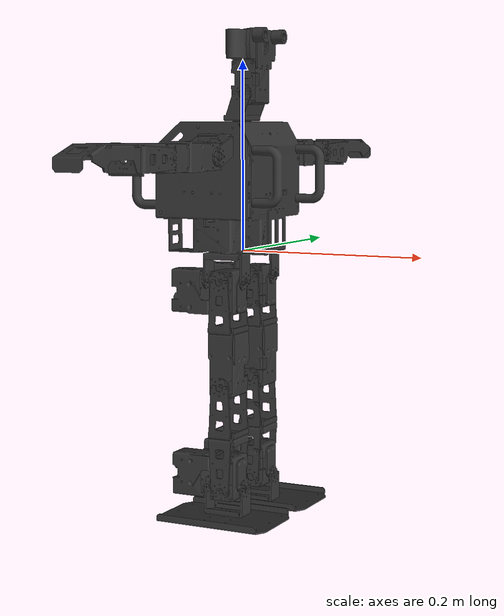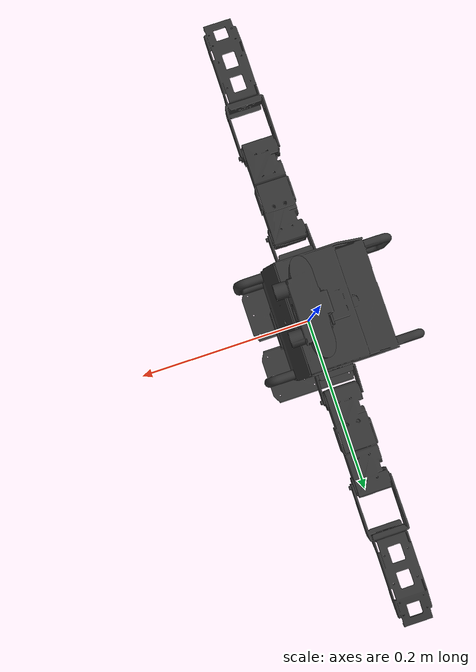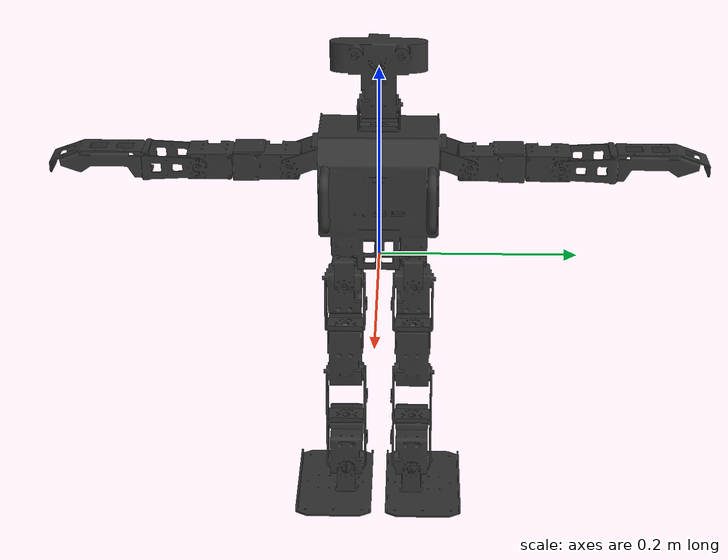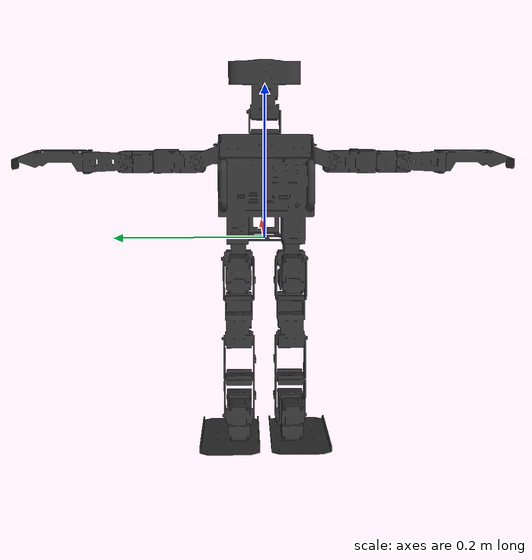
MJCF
<?xml version="1.0" ?>
<mujoco model="robotis_op3">
	<compiler meshdir="robotis_op3/meshes" texturedir="robotis_op3/textures" angle="radian" autolimits="true" balanceinertia="true" boundmass="0.000001" boundinertia="0.000001"/>
	<default>
		<default class="visual">
			<geom contype="0" conaffinity="0"/>
		</default>
		<default class="collision">
			<geom rgba="1.0 0.0 0.0 0.0"/>
		</default>
	</default>
	<asset>
		<mesh name="body" file="stl/body.stl" scale="1.0 1.0 1.0"/>
		<mesh name="bodyc" file="stl/bodyc.stl" scale="1.0 1.0 1.0"/>
		<mesh name="body1c" file="stl/body1c.stl" scale="1.0 1.0 1.0"/>
		<mesh name="body2c" file="stl/body2c.stl" scale="1.0 1.0 1.0"/>
		<mesh name="body3c" file="stl/body3c.stl" scale="1.0 1.0 1.0"/>
		<mesh name="body4c" file="stl/body4c.stl" scale="1.0 1.0 1.0"/>
		<mesh name="h1" file="stl/h1.stl" scale="1.0 1.0 1.0"/>
		<mesh name="h1c" file="stl/h1c.stl" scale="1.0 1.0 1.0"/>
		<mesh name="h2" file="stl/h2.stl" scale="1.0 1.0 1.0"/>
		<mesh name="h2c" file="stl/h2c.stl" scale="1.0 1.0 1.0"/>
		<mesh name="h21c" file="stl/h21c.stl" scale="1.0 1.0 1.0"/>
		<mesh name="h22c" file="stl/h22c.stl" scale="1.0 1.0 1.0"/>
		<mesh name="la1" file="stl/la1.stl" scale="1.0 1.0 1.0"/>
		<mesh name="la1c" file="stl/la1c.stl" scale="1.0 1.0 1.0"/>
		<mesh name="la2" file="stl/la2.stl" scale="1.0 1.0 1.0"/>
		<mesh name="la2c" file="stl/la2c.stl" scale="1.0 1.0 1.0"/>
		<mesh name="la3" file="stl/la3.stl" scale="1.0 1.0 1.0"/>
		<mesh name="la3c" file="stl/la3c.stl" scale="1.0 1.0 1.0"/>
		<mesh name="ra1" file="stl/ra1.stl" scale="1.0 1.0 1.0"/>
		<mesh name="ra1c" file="stl/ra1c.stl" scale="1.0 1.0 1.0"/>
		<mesh name="ra2" file="stl/ra2.stl" scale="1.0 1.0 1.0"/>
		<mesh name="ra2c" file="stl/ra2c.stl" scale="1.0 1.0 1.0"/>
		<mesh name="ra3" file="stl/ra3.stl" scale="1.0 1.0 1.0"/>
		<mesh name="ra3c" file="stl/ra3c.stl" scale="1.0 1.0 1.0"/>
		<mesh name="ll1" file="stl/ll1.stl" scale="1.0 1.0 1.0"/>
		<mesh name="ll1c" file="stl/ll1c.stl" scale="1.0 1.0 1.0"/>
		<mesh name="ll2" file="stl/ll2.stl" scale="1.0 1.0 1.0"/>
		<mesh name="ll2c" file="stl/ll2c.stl" scale="1.0 1.0 1.0"/>
		<mesh name="ll3" file="stl/ll3.stl" scale="1.0 1.0 1.0"/>
		<mesh name="ll3c" file="stl/ll3c.stl" scale="1.0 1.0 1.0"/>
		<mesh name="ll4" file="stl/ll4.stl" scale="1.0 1.0 1.0"/>
		<mesh name="ll4c" file="stl/ll4c.stl" scale="1.0 1.0 1.0"/>
		<mesh name="ll5" file="stl/ll5.stl" scale="1.0 1.0 1.0"/>
		<mesh name="ll5c" file="stl/ll5c.stl" scale="1.0 1.0 1.0"/>
		<mesh name="ll6" file="stl/ll6.stl" scale="1.0 1.0 1.0"/>
		<mesh name="rl1" file="stl/rl1.stl" scale="1.0 1.0 1.0"/>
		<mesh name="rl1c" file="stl/rl1c.stl" scale="1.0 1.0 1.0"/>
		<mesh name="rl2" file="stl/rl2.stl" scale="1.0 1.0 1.0"/>
		<mesh name="rl2c" file="stl/rl2c.stl" scale="1.0 1.0 1.0"/>
		<mesh name="rl3" file="stl/rl3.stl" scale="1.0 1.0 1.0"/>
		<mesh name="rl3c" file="stl/rl3c.stl" scale="1.0 1.0 1.0"/>
		<mesh name="rl4" file="stl/rl4.stl" scale="1.0 1.0 1.0"/>
		<mesh name="rl4c" file="stl/rl4c.stl" scale="1.0 1.0 1.0"/>
		<mesh name="rl5" file="stl/rl5.stl" scale="1.0 1.0 1.0"/>
		<mesh name="rl5c" file="stl/rl5c.stl" scale="1.0 1.0 1.0"/>
		<mesh name="rl6" file="stl/rl6.stl" scale="1.0 1.0 1.0"/>
		<material name="black" rgba="0.20000000298023224 0.20000000298023224 0.20000000298023224 1.0" emission="0.0" specular="0.5"/>
	</asset>
	<worldbody>
		<body name="robotis_op3" pos="0.0 0.0 0.0" quat="1.0 0.0 0.0 0.0">
			<body name="body_link" pos="0.0 0.0 0.0" quat="1.0 0.0 0.0 0.0">
				<geom name="Geom_0" type="mesh" pos="-0.015062353573739529 0.00010709041089285165 0.07382681220769882" quat="0.31562358140945435 0.33037233352661133 -0.6202384233474731 0.6376050114631653" mesh="body" material="black" class="visual"/>
				<geom name="Geom_1" type="mesh" pos="-0.01547978911548853 8.47600517772662e-07 0.06837675720453262" quat="0.9998198747634888 1.6580177543801256e-05 0.018978890031576157 -0.00011253798584220931" mesh="bodyc" class="collision"/>
				<geom name="Geom_2" type="mesh" pos="-0.08686629682779312 0.052499834448099136 0.07599484175443649" quat="0.7070932388305664 0.0001319300790783018 0.0001334189873887226 0.7071202993392944" mesh="body1c" class="collision"/>
				<geom name="Geom_3" type="mesh" pos="-0.0868721529841423 -0.05250003933906555 0.07600828260183334" quat="0.7070996761322021 -0.00021320315136108547 -0.00024253582523670048 0.7071138024330139" mesh="body2c" class="collision"/>
				<geom name="Geom_4" type="mesh" pos="0.05340399965643883 0.05198853462934494 0.08048465102910995" quat="0.7076866030693054 -0.000729478255379945 -0.0003954711137339473 0.7065260410308838" mesh="body3c" class="collision"/>
				<geom name="Geom_5" type="mesh" pos="0.053379133343696594 -0.05200115218758583 0.0805167555809021" quat="0.7071372270584106 6.267690332606435e-05 7.622383418492973e-05 0.707076370716095" mesh="body4c" class="collision"/>
				<body name="l_sho_pitch_link" pos="-0.0010000000474974513 0.05999999865889549 0.11100000143051147" quat="1.0 0.0 0.0 0.0">
					<inertial mass="0.011760000139474869" pos="0.0 0.008229999803006649 -0.0023300000466406345" quat="0.24427185952663422 0.6635746359825134 0.24427185952663422 0.6635746359825134" diaginertia="4.234009793435689e-06 3.6059900594409555e-06 1.6499999446750735e-06"/>
					<geom name="Geom_12" type="mesh" pos="-4.0903142206616394e-08 0.010566436685621738 -0.002973126480355859" quat="0.2261854112148285 0.6699541807174683 0.22618435323238373 0.6699568629264832" mesh="la1" material="black" class="visual"/>
					<geom name="Geom_13" type="mesh" pos="-5.168489991547176e-08 0.014937390573322773 -0.004382733721286058" quat="0.21737512946128845 0.6728646755218506 0.21738243103027344 0.6728640198707581" mesh="la1c" class="collision"/>
					<joint name="l_sho_pitch" type="hinge" pos="0.0 0.0 0.0" range="0.0 0.0" axis="0.0 1.0 0.0"/>
					<body name="l_sho_roll_link" pos="0.01899999938905239 0.02850000001490116 -0.009999999776482582" quat="1.0 0.0 0.0 0.0">
						<inertial mass="0.17757999897003174" pos="-0.01844000071287155 0.04513999819755554 0.0002800000074785203" quat="0.5018527507781982 0.500379741191864 -0.49817273020744324 0.4995877146720886" diaginertia="0.00023474199406336993 0.00022803999308962375 3.041829950234387e-05"/>
						<geom name="Geom_14" type="mesh" pos="-0.019178275018930435 0.04488653689622879 0.0007386953802779317" quat="0.5009437799453735 0.49853265285491943 -0.49895212054252625 0.5015649199485779" mesh="la2" material="black" class="visual"/>
						<geom name="Geom_15" type="mesh" pos="-0.017953641712665558 0.04512150213122368 0.0003643354866653681" quat="0.5021325349807739 0.5011329650878906 -0.4978412091732025 0.49888157844543457" mesh="la2c" class="collision"/>
						<joint name="l_sho_roll" type="hinge" pos="0.0 0.0 0.0" range="0.0 0.0" axis="-1.0 0.0 0.0"/>
						<body name="l_el_link" pos="0.0 0.09040000289678574 -9.999999747378752e-05" quat="1.0 0.0 0.0 0.0">
							<inertial mass="0.041269998997449875" pos="-0.01899999938905239 0.07033000141382217 0.003800000064074993" quat="0.48328912258148193 0.5161701440811157 -0.5161701440811157 0.48328912258148193" diaginertia="6.878499698359519e-05 6.196000322233886e-05 1.2065000191796571e-05"/>
							<geom name="Geom_16" type="mesh" pos="-0.018999997526407242 0.07777010649442673 0.003117768792435527" quat="0.4925389885902405 0.507351279258728 -0.507351279258728 0.4925389885902405" mesh="la3" material="black" class="visual"/>
							<geom name="Geom_17" type="mesh" pos="-0.018999997526407242 0.0671701654791832 0.00045586045598611236" quat="0.498165488243103 0.5018261075019836 -0.5018278360366821 0.4981671869754791" mesh="la3c" class="collision"/>
							<joint name="l_el" type="hinge" pos="0.0 0.0 0.0" range="0.0 0.0" axis="1.0 0.0 0.0"/>
						</body>
					</body>
				</body>
				<body name="r_sho_pitch_link" pos="-0.0010000000474974513 -0.05999999865889549 0.11100000143051147" quat="1.0 0.0 0.0 0.0">
					<inertial mass="0.011760000139474869" pos="0.0 -0.008229999803006649 -0.0023300000466406345" quat="-0.24427185952663422 0.6635746359825134 -0.24427185952663422 0.6635746359825134" diaginertia="4.234009793435689e-06 3.6059900594409555e-06 1.6499999446750735e-06"/>
					<geom name="Geom_18" type="mesh" pos="4.0903142206616394e-08 -0.010566436685621738 -0.002973126480355859" quat="-0.22618435323238373 0.6699568629264832 -0.2261854112148285 0.6699541807174683" mesh="ra1" material="black" class="visual"/>
					<geom name="Geom_19" type="mesh" pos="1.7024168741386347e-08 -0.01493731141090393 -0.004382750019431114" quat="-0.21737539768218994 0.6728663444519043 -0.21737487614154816 0.6728647351264954" mesh="ra1c" class="collision"/>
					<joint name="r_sho_pitch" type="hinge" pos="0.0 0.0 0.0" range="0.0 0.0" axis="0.0 -1.0 0.0"/>
					<body name="r_sho_roll_link" pos="0.01899999938905239 -0.02850000001490116 -0.009999999776482582" quat="1.0 0.0 0.0 0.0">
						<inertial mass="0.17757999897003174" pos="-0.01844000071287155 -0.04513999819755554 0.0002800000074785203" quat="0.500379741191864 0.5018527507781982 -0.4995877146720886 0.49817273020744324" diaginertia="0.00023474199406336993 0.00022803999308962375 3.041829950234387e-05"/>
						<geom name="Geom_20" type="mesh" pos="-0.019178282469511032 -0.04488654434680939 0.0007386964280158281" quat="0.4985331892967224 0.5009435415267944 -0.5015642046928406 0.4989525079727173" mesh="ra2" material="black" class="visual"/>
						<geom name="Geom_21" type="mesh" pos="-0.017953014001250267 -0.04512038454413414 0.0003643217496573925" quat="0.5011412501335144 0.5021283030509949 -0.4988856315612793 0.4978330135345459" mesh="ra2c" class="collision"/>
						<joint name="r_sho_roll" type="hinge" pos="0.0 0.0 0.0" range="0.0 0.0" axis="-1.0 0.0 0.0"/>
						<body name="r_el_link" pos="0.0 -0.09040000289678574 -9.999999747378752e-05" quat="1.0 0.0 0.0 0.0">
							<inertial mass="0.041269998997449875" pos="-0.01899999938905239 -0.07033000141382217 0.003800000064074993" quat="0.5161701440811157 0.48328912258148193 -0.48328912258148193 0.5161701440811157" diaginertia="6.878499698359519e-05 6.196000322233886e-05 1.2065000191796571e-05"/>
							<geom name="Geom_22" type="mesh" pos="-0.01900000311434269 -0.07777010649442673 0.003117768792435527" quat="0.507351279258728 0.4925389885902405 -0.4925389885902405 0.507351279258728" mesh="ra3" material="black" class="visual"/>
							<geom name="Geom_23" type="mesh" pos="-0.018999941647052765 -0.0671704038977623 0.00045584727195091546" quat="0.5018273591995239 0.4981687068939209 -0.4981642961502075 0.5018262267112732" mesh="ra3c" class="collision"/>
							<joint name="r_el" type="hinge" pos="0.0 0.0 0.0" range="0.0 0.0" axis="1.0 0.0 0.0"/>
						</body>
					</body>
				</body>
				<body name="l_hip_yaw_link" pos="0.0 0.03500000014901161 0.0" quat="1.0 0.0 0.0 0.0">
					<inertial mass="0.01181000005453825" pos="-0.0015699999639764428 0.0 -0.007739999797195196" quat="0.4990410804748535 0.5009570717811584 0.5009570717811584 0.4990410804748535" diaginertia="4.300000000512227e-06 4.120040102861822e-06 1.509960043222236e-06"/>
					<geom name="Geom_24" type="mesh" pos="-0.0014929076423868537 -1.3410697899396418e-11 -0.010288386605679989" quat="0.5000420808792114 0.49995794892311096 0.49995794892311096 0.5000420808792114" mesh="ll1" material="black" class="visual"/>
					<geom name="Geom_25" type="mesh" pos="-0.00150005123578012 -4.39843219623981e-08 -0.01487430278211832" quat="0.4999925196170807 0.5000094771385193 0.49999815225601196 0.49999985098838806" mesh="ll1c" class="collision"/>
					<joint name="l_hip_yaw" type="hinge" pos="0.0 0.0 0.0" range="0.0 0.0" axis="0.0 0.0 -1.0"/>
					<body name="l_hip_roll_link" pos="-0.024000000208616257 0.0 -0.02850000001490116" quat="1.0 0.0 0.0 0.0">
						<inertial mass="0.17885999381542206" pos="0.0038799999747425318 0.0002800000074785203 -0.012140000239014626" quat="0.5026571154594421 0.49085211753845215 0.49849411845207214 0.5078421235084534" diaginertia="0.00012524299381766468 0.00010859799658646807 4.656930104829371e-05"/>
						<geom name="Geom_26" type="mesh" pos="0.007365824654698372 5.1177201385144144e-05 -0.01213391125202179" quat="0.5124639272689819 0.48538973927497864 0.4855455160140991 0.5157742500305176" mesh="ll2" material="black" class="visual"/>
						<geom name="Geom_27" type="mesh" pos="0.004096889402717352 0.000626525143161416 -0.011638031341135502" quat="0.5108701586723328 0.4849127233028412 0.5008082389831543 0.5030531287193298" mesh="ll2c" class="collision"/>
						<joint name="l_hip_roll" type="hinge" pos="0.0 0.0 0.0" range="0.0 0.0" axis="-1.0 0.0 0.0"/>
						<body name="l_hip_pitch_link" pos="0.02410000003874302 0.01899999938905239 0.0" quat="1.0 0.0 0.0 0.0">
							<inertial mass="0.11542999744415283" pos="0.000590000010561198 -0.019009999930858612 -0.08408000320196152" quat="0.9996820092201233 0.024691499769687653 0.004478250164538622 -0.0024820000398904085" diaginertia="0.0001049959973897785 9.630440035834908e-05 2.4749200747464783e-05"/>
							<geom name="Geom_28" type="mesh" pos="0.0009626309620216489 -0.019421827048063278 -0.07083793729543686" quat="0.9999699592590332 0.007639887742698193 -6.425838364521042e-05 -0.0012871582293882966" mesh="ll3" material="black" class="visual"/>
							<geom name="Geom_29" type="mesh" pos="0.00022433706908486784 -0.01883688010275364 -0.061354782432317734" quat="0.9999703764915466 0.007389495149254799 -0.0020882626995444298 0.0004902370856143534" mesh="ll3c" class="collision"/>
							<joint name="l_hip_pitch" type="hinge" pos="0.0 0.0 0.0" range="0.0 0.0" axis="0.0 1.0 0.0"/>
							<body name="l_knee_link" pos="0.0 0.0 -0.11015000194311142" quat="1.0 0.0 0.0 0.0">
								<inertial mass="0.040150001645088196" pos="0.0 -0.02150999940931797 -0.054999999701976776" quat="1.0 0.0 0.0 0.0" diaginertia="3.7149999116081744e-05 2.750999919953756e-05 1.5110000276763458e-05"/>
								<geom name="Geom_30" type="mesh" pos="1.133239877805503e-12 -0.01982726715505123 -0.054999999701976776" quat="1.0 0.0 0.0 0.0" mesh="ll4" material="black" class="visual"/>
								<geom name="Geom_31" type="mesh" pos="-1.9772162573872265e-08 -0.01967543177306652 -0.055000144988298416" quat="1.0 0.0 0.0 0.0" mesh="ll4c" class="collision"/>
								<joint name="l_knee" type="hinge" pos="0.0 0.0 0.0" range="0.0 0.0" axis="0.0 1.0 0.0"/>
								<body name="l_ank_pitch_link" pos="0.0 0.0 -0.10999999940395355" quat="1.0 0.0 0.0 0.0">
									<inertial mass="0.17885999381542206" pos="-0.02022000029683113 -0.018719999119639397 0.012140000239014626" quat="0.49085211753845215 0.5026571154594421 0.5078421235084534 0.49849411845207214" diaginertia="0.00012524299381766468 0.00010859799658646807 4.656930104829371e-05"/>
									<geom name="Geom_32" type="mesh" pos="-0.016888968646526337 -0.018948335200548172 0.012196226045489311" quat="0.48652714490890503 0.5113601088523865 0.514674961566925 0.4867359399795532" mesh="ll5" material="black" class="visual"/>
									<geom name="Geom_33" type="mesh" pos="-0.020036710426211357 -0.018372967839241028 0.011648035608232021" quat="0.4851568639278412 0.5105876326560974 0.5027398467063904 0.5011743903160095" mesh="ll5c" class="collision"/>
									<joint name="l_ank_pitch" type="hinge" pos="0.0 0.0 0.0" range="0.0 0.0" axis="0.0 -1.0 0.0"/>
									<body name="l_ank_roll_link" pos="-0.02410000003874302 -0.01899999938905239 0.0" quat="1.0 0.0 0.0 0.0">
										<inertial mass="0.06933999806642532" pos="0.023730000481009483 0.010370000265538692 -0.02759999968111515" quat="0.007851498201489449 0.7076008319854736 0.01139649748802185 0.7064768671989441" diaginertia="0.00011581800208659843 7.871349953347817e-05 4.033889854326844e-05"/>
										<geom name="Geom_34" type="mesh" pos="0.02351418510079384 0.010033032856881618 -0.025106150656938553" quat="0.005711215082556009 0.7084949612617493 0.017601266503334045 0.7054731845855713" mesh="ll6" material="black" class="visual"/>
										<geom name="Geom_35" type="box" pos="0.024000000208616257 0.013000000268220901 -0.026499999687075615" quat="1.0 0.0 0.0 0.0" size="0.06350000202655792 0.02800000086426735 0.004000000189989805" class="collision"/>
										<geom name="Geom_36" type="box" pos="0.024000000208616257 0.012500000186264515 -0.026499999687075615" quat="1.0 0.0 0.0 0.0" size="0.05700000002980232 0.039000000804662704 0.004000000189989805" class="collision"/>
										<joint name="l_ank_roll" type="hinge" pos="0.0 0.0 0.0" range="0.0 0.0" axis="1.0 0.0 0.0"/>
									</body>
								</body>
							</body>
						</body>
					</body>
				</body>
				<body name="r_hip_yaw_link" pos="0.0 -0.03500000014901161 0.0" quat="1.0 0.0 0.0 0.0">
					<inertial mass="0.01181000005453825" pos="-0.0015699999639764428 0.0 -0.007739999797195196" quat="0.4990410804748535 0.5009570717811584 0.5009570717811584 0.4990410804748535" diaginertia="4.300000000512227e-06 4.120040102861822e-06 1.509960043222236e-06"/>
					<geom name="Geom_37" type="mesh" pos="-0.0014929076423868537 -1.3410697899396418e-11 -0.010288386605679989" quat="0.5000420808792114 0.49995794892311096 0.49995794892311096 0.5000420808792114" mesh="rl1" material="black" class="visual"/>
					<geom name="Geom_38" type="mesh" pos="-0.00150005123578012 -4.39843219623981e-08 -0.01487430278211832" quat="0.4999925196170807 0.5000094771385193 0.49999815225601196 0.49999985098838806" mesh="rl1c" class="collision"/>
					<joint name="r_hip_yaw" type="hinge" pos="0.0 0.0 0.0" range="0.0 0.0" axis="0.0 0.0 -1.0"/>
					<body name="r_hip_roll_link" pos="-0.024000000208616257 0.0 -0.02850000001490116" quat="1.0 0.0 0.0 0.0">
						<inertial mass="0.17885999381542206" pos="0.0038799999747425318 -0.0002800000074785203 -0.012140000239014626" quat="0.5078421235084534 0.49849411845207214 0.49085211753845215 0.5026571154594421" diaginertia="0.00012524299381766468 0.00010859799658646807 4.656930104829371e-05"/>
						<geom name="Geom_39" type="mesh" pos="0.007365823723375797 -5.1178114517824724e-05 -0.012133914977312088" quat="0.5157740712165833 0.48554569482803345 0.48538967967033386 0.5124640464782715" mesh="rl2" material="black" class="visual"/>
						<geom name="Geom_40" type="mesh" pos="0.004096920136362314 -0.0006264956318773329 -0.011638014577329159" quat="0.5030507445335388 0.5008099675178528 0.48491182923316956 0.5108716487884521" mesh="rl2c" class="collision"/>
						<joint name="r_hip_roll" type="hinge" pos="0.0 0.0 0.0" range="0.0 0.0" axis="-1.0 0.0 0.0"/>
						<body name="r_hip_pitch_link" pos="0.02410000003874302 -0.01899999938905239 0.0" quat="1.0 0.0 0.0 0.0">
							<inertial mass="0.11542999744415283" pos="0.000590000010561198 0.019009999930858612 -0.08408000320196152" quat="0.9996820092201233 -0.024691499769687653 0.004478250164538622 0.0024820000398904085" diaginertia="0.0001049959973897785 9.630440035834908e-05 2.4749200747464783e-05"/>
							<geom name="Geom_41" type="mesh" pos="0.0009626252576708794 0.019421830773353577 -0.07083792984485626" quat="0.9999699592590332 -0.007639843970537186 -6.429859786294401e-05 0.0012870409991592169" mesh="rl3" material="black" class="visual"/>
							<geom name="Geom_42" type="mesh" pos="0.00022432378318626434 0.018836867064237595 -0.06135456636548042" quat="0.9999704360961914 -0.007387716788798571 -0.0020886599086225033 -0.0004885036614723504" mesh="rl3c" class="collision"/>
							<joint name="r_hip_pitch" type="hinge" pos="0.0 0.0 0.0" range="0.0 0.0" axis="0.0 -1.0 0.0"/>
							<body name="r_knee_link" pos="0.0 0.0 -0.11015000194311142" quat="1.0 0.0 0.0 0.0">
								<inertial mass="0.040150001645088196" pos="0.0 0.02150999940931797 -0.054999999701976776" quat="1.0 0.0 0.0 0.0" diaginertia="3.7149999116081744e-05 2.750999919953756e-05 1.5110000276763458e-05"/>
								<geom name="Geom_43" type="mesh" pos="-1.133239877805503e-12 0.01982726715505123 -0.054999999701976776" quat="1.0 0.0 0.0 0.0" mesh="rl4" material="black" class="visual"/>
								<geom name="Geom_44" type="mesh" pos="4.632620953515243e-09 0.019675450399518013 -0.05499984323978424" quat="1.0 0.0 0.0 0.0" mesh="rl4c" class="collision"/>
								<joint name="r_knee" type="hinge" pos="0.0 0.0 0.0" range="0.0 0.0" axis="0.0 -1.0 0.0"/>
								<body name="r_ank_pitch_link" pos="0.0 0.0 -0.10999999940395355" quat="1.0 0.0 0.0 0.0">
									<inertial mass="0.17885999381542206" pos="-0.02022000029683113 0.018719999119639397 0.012140000239014626" quat="0.49849411845207214 0.5078421235084534 0.5026571154594421 0.49085211753845215" diaginertia="0.00012524299381766468 0.00010859799658646807 4.656930104829371e-05"/>
									<geom name="Geom_45" type="mesh" pos="-0.016734184697270393 0.01894882321357727 0.012133914045989513" quat="0.4855455756187439 0.5157741904258728 0.5124638676643372 0.4853897988796234" mesh="rl5" material="black" class="visual"/>
									<geom name="Geom_46" type="mesh" pos="-0.02000303380191326 0.01837349869310856 0.011638008989393711" quat="0.5008053779602051 0.5030527114868164 0.5108705759048462 0.4849156141281128" mesh="rl5c" class="collision"/>
									<joint name="r_ank_pitch" type="hinge" pos="0.0 0.0 0.0" range="0.0 0.0" axis="0.0 1.0 0.0"/>
									<body name="r_ank_roll_link" pos="-0.02410000003874302 0.01899999938905239 0.0" quat="1.0 0.0 0.0 0.0">
										<inertial mass="0.06933999806642532" pos="0.023730000481009483 -0.010370000265538692 -0.02759999968111515" quat="-0.007851498201489449 0.7076008319854736 -0.01139649748802185 0.7064768671989441" diaginertia="0.00011581800208659843 7.871349953347817e-05 4.033889854326844e-05"/>
										<geom name="Geom_47" type="mesh" pos="0.023514186963438988 -0.010033032856881618 -0.025106150656938553" quat="-0.005711216013878584 0.7084949612617493 -0.017601268365979195 0.7054731845855713" mesh="rl6" material="black" class="visual"/>
										<geom name="Geom_48" type="box" pos="0.024000000208616257 -0.013000000268220901 -0.026499999687075615" quat="1.0 0.0 0.0 0.0" size="0.06350000202655792 0.02800000086426735 0.004000000189989805" class="collision"/>
										<geom name="Geom_49" type="box" pos="0.024000000208616257 -0.012500000186264515 -0.026499999687075615" quat="1.0 0.0 0.0 0.0" size="0.05700000002980232 0.039000000804662704 0.004000000189989805" class="collision"/>
										<joint name="r_ank_roll" type="hinge" pos="0.0 0.0 0.0" range="0.0 0.0" axis="1.0 0.0 0.0"/>
									</body>
								</body>
							</body>
						</body>
					</body>
				</body>
				<body name="head_pan_link" pos="-0.0010000000474974513 0.0 0.13650000095367432" quat="1.0 0.0 0.0 0.0">
					<inertial mass="0.011760000139474869" pos="0.0023300000466406345 0.0 0.008229999803006649" quat="0.6635746359825134 0.6635746359825134 0.24427185952663422 -0.24427185952663422" diaginertia="4.234009793435689e-06 3.6059900594409555e-06 1.6499999446750735e-06"/>
					<geom name="Geom_6" type="mesh" pos="0.002973126480355859 4.0903142206616394e-08 0.010566436685621738" quat="0.6699550151824951 0.6699560284614563 0.22618356347084045 -0.22618620097637177" mesh="h1" material="black" class="visual"/>
					<geom name="Geom_7" type="mesh" pos="0.0043823751620948315 -1.181606307909533e-06 0.014936410821974277" quat="0.672756016254425 0.6729751229286194 0.21735230088233948 -0.21739782392978668" mesh="h1c" class="collision"/>
					<joint name="head_pan" type="hinge" pos="0.0 0.0 0.0" range="0.0 0.0" axis="0.0 0.0 1.0"/>
					<body name="head_tilt_link" pos="0.009999999776482582 0.01899999938905239 0.02850000001490116" quat="1.0 0.0 0.0 0.0">
						<inertial mass="0.13630999624729156" pos="0.002300000051036477 -0.018629999831318855 0.027699999511241913" quat="0.9973121285438538 0.009738250635564327 0.07261310517787933 -0.0010270201601088047" diaginertia="0.00010745199688244611 8.722660277271643e-05 4.3941301555605605e-05"/>
						<geom name="Geom_8" type="mesh" pos="0.0029126012232154608 -0.01905038394033909 0.03745144605636597" quat="0.9980869293212891 -0.003525641281157732 0.061723142862319946 0.0005083727883175015" mesh="h2" material="black" class="visual"/>
						<geom name="Geom_9" type="mesh" pos="0.0005553366499952972 -0.01900036446750164 0.031976763159036636" quat="0.9999665021896362 -0.0004889009287580848 0.008167878724634647 -1.3743036106461659e-05" mesh="h2c" class="collision"/>
						<geom name="Geom_10" type="mesh" pos="0.022246643900871277 0.0030046773608773947 0.05925098434090614" quat="0.99552983045578 0.0942888855934143 -0.005383244249969721 0.0010148901492357254" mesh="h21c" class="collision"/>
						<geom name="Geom_11" type="mesh" pos="0.022246643900871277 -0.04099532216787338 0.05925098434090614" quat="0.9955299496650696 0.09428748488426208 -0.005383363924920559 0.0010149070294573903" mesh="h22c" class="collision"/>
						<joint name="head_tilt" type="hinge" pos="0.0 0.0 0.0" range="0.0 0.0" axis="0.0 -1.0 0.0"/>
					</body>
				</body>
			</body>
		</body>
	</worldbody>
	<equality/>
</mujoco>
